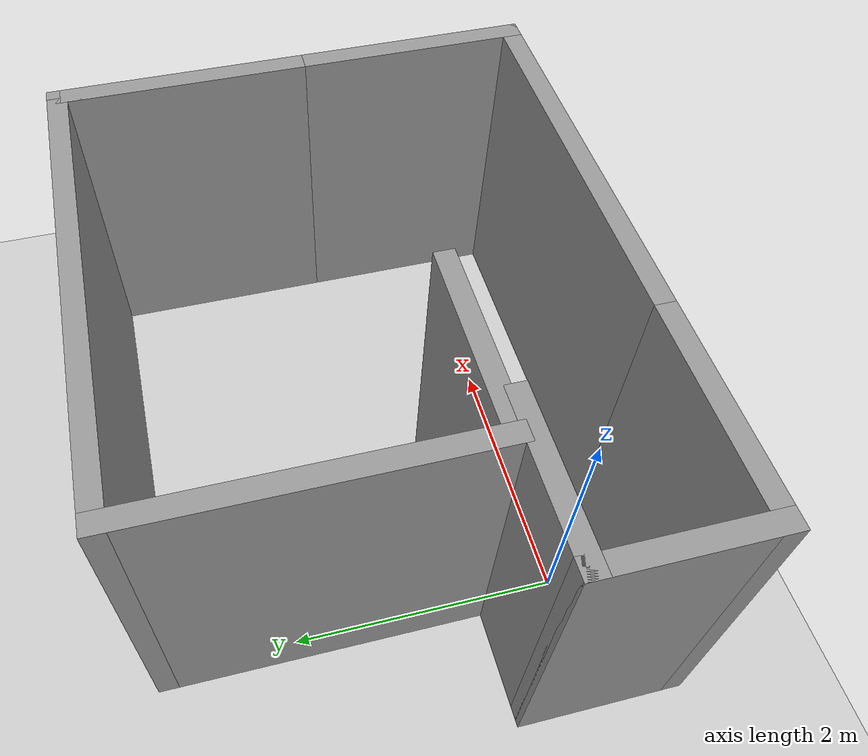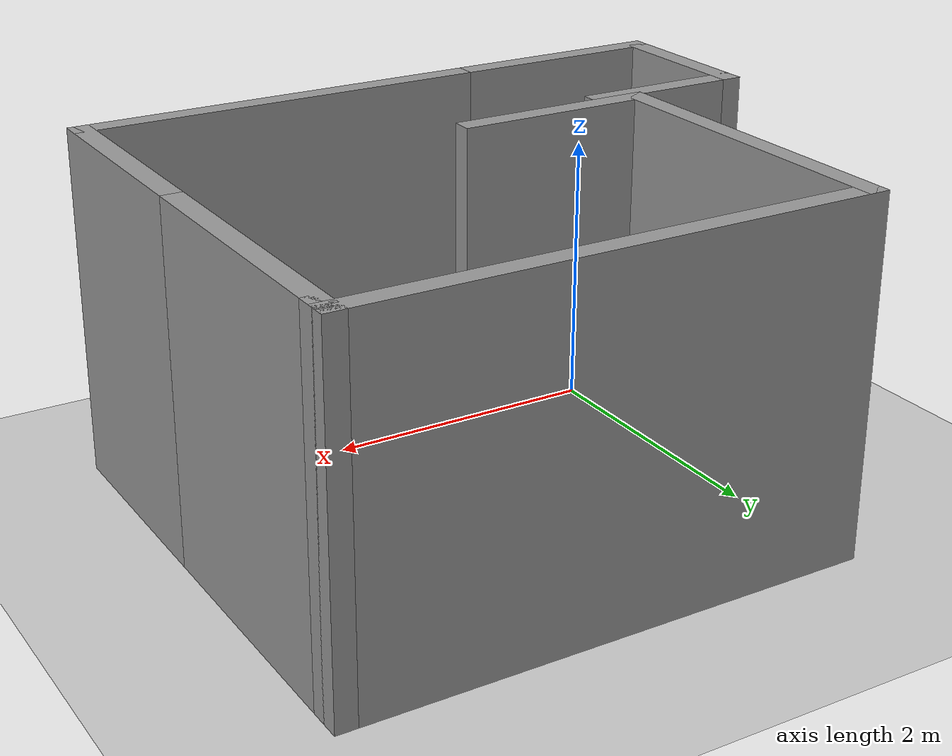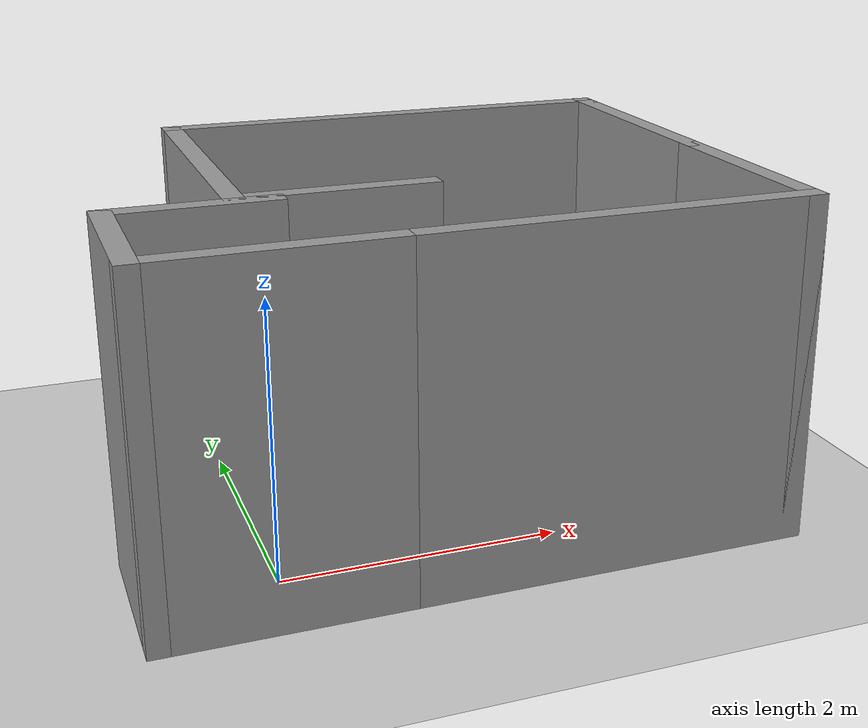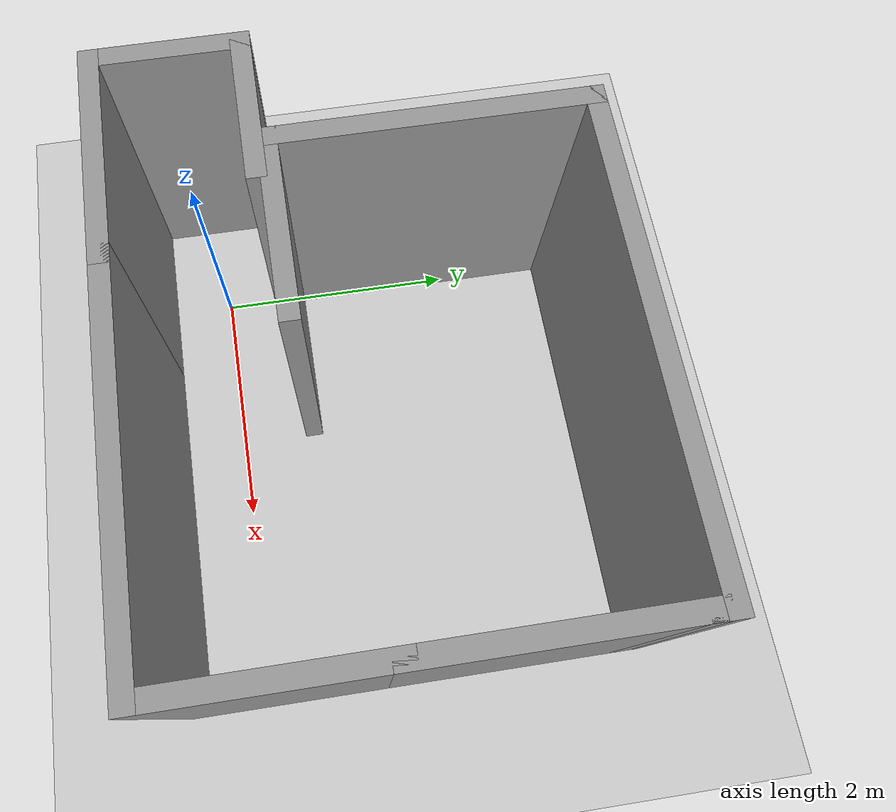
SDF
<sdf version="1.7">
 <world name="default">
  <light name="sun" type="directional">
   <pose>0 0 10 0 -0 0</pose>
   <diffuse>0.8 0.8 0.8 1</diffuse>
   <specular>0.2 0.2 0.2 1</specular>
   <attenuation>
    <range>1000</range>
    <constant>0.9</constant>
    <linear>0.01</linear>
    <quadratic>0.001</quadratic>
   </attenuation>
   <direction>-0.5 0.1 -0.9</direction>
   <spot><inner_angle>0</inner_angle><outer_angle>0</outer_angle><falloff>0</falloff></spot>
  </light>
  <model name="ground_plane">
   <static>1</static>
   <link name="link">
    <collision name="collision">
     <geometry><plane><normal>0 0 1</normal><size>100 100</size></plane></geometry>
     <surface>
      <contact><collide_bitmask>65535</collide_bitmask></contact>
      <friction><ode><mu>100</mu><mu2>50</mu2></ode></friction>
     </surface>
    </collision>
    <visual name="visual">
     <cast_shadows>0</cast_shadows>
     <geometry><plane><normal>0 0 1</normal><size>100 100</size></plane></geometry>
     <material>
      <script><uri>file://media/materials/scripts/gazebo.material</uri><name>Gazebo/Grey</name></script>
     </material>
    </visual>
   </link>
  </model>
  <gravity>0 0 -9.8</gravity>
  <magnetic_field>6e-06 2.3e-05 -4.2e-05</magnetic_field>
  <atmosphere type="adiabatic"/>
  <physics type="ode">
   <max_step_size>0.001</max_step_size>
   <real_time_factor>1</real_time_factor>
   <real_time_update_rate>1000</real_time_update_rate>
  </physics>
  <scene><ambient>0.4 0.4 0.4 1</ambient><background>0.7 0.7 0.7 1</background><shadows>1</shadows></scene>
  <spherical_coordinates>
   <surface_model>EARTH_WGS84</surface_model>
   <latitude_deg>0</latitude_deg>
   <longitude_deg>0</longitude_deg>
   <elevation>0</elevation>
   <heading_deg>0</heading_deg>
  </spherical_coordinates>
  <model name="new_pipe">
   <pose>1.325 1.195 0 0 -0 0</pose>
   <link name="Wall_17">
    <collision name="Wall_17_Collision">
     <geometry><box><size>3 0.15 2.5</size></box></geometry>
     <pose>0 0 1.25 0 -0 0</pose>
    </collision>
    <visual name="Wall_17_Visual">
     <pose>0 0 1.25 0 -0 0</pose>
     <geometry><box><size>3 0.15 2.5</size></box></geometry>
     <material>
      <script><uri>file://media/materials/scripts/gazebo.material</uri><name>Gazebo/Grey</name></script>
      <ambient>1 1 1 1</ambient>
     </material>
     <meta><layer>0</layer></meta>
    </visual>
    <pose>0.8 -1.775 0 0 -0 0</pose>
   </link>
   <link name="Wall_18">
    <collision name="Wall_18_Collision">
     <geometry><box><size>1.75 0.15 2.5</size></box></geometry>
     <pose>0 0 1.25 0 -0 0</pose>
    </collision>
    <visual name="Wall_18_Visual">
     <pose>0 0 1.25 0 -0 0</pose>
     <geometry><box><size>1.75 0.15 2.5</size></box></geometry>
     <material>
      <script><uri>file://media/materials/scripts/gazebo.material</uri><name>Gazebo/Grey</name></script>
      <ambient>1 1 1 1</ambient>
     </material>
     <meta><layer>0</layer></meta>
    </visual>
    <pose>2.225 -0.975 0 0 -0 1.5708</pose>
   </link>
   <link name="Wall_21">
    <collision name="Wall_21_Collision">
     <geometry><box><size>2 0.15 2.5</size></box></geometry>
     <pose>0 0 1.25 0 -0 0</pose>
    </collision>
    <visual name="Wall_21_Visual">
     <pose>0 0 1.25 0 -0 0</pose>
     <geometry><box><size>2 0.15 2.5</size></box></geometry>
     <material>
      <script><uri>file://media/materials/scripts/gazebo.material</uri><name>Gazebo/Grey</name></script>
      <ambient>1 1 1 1</ambient>
     </material>
     <meta><layer>0</layer></meta>
    </visual>
    <pose>2.225 0.75 0 0 -0 1.5708</pose>
   </link>
   <link name="Wall_23">
    <collision name="Wall_23_Collision">
     <geometry><box><size>0.25 0.15 2.5</size></box></geometry>
     <pose>0 0 1.25 0 -0 0</pose>
    </collision>
    <visual name="Wall_23_Visual">
     <pose>0 0 1.25 0 -0 0</pose>
     <geometry><box><size>0.25 0.15 2.5</size></box></geometry>
     <material>
      <script><uri>file://media/materials/scripts/gazebo.material</uri><name>Gazebo/Grey</name></script>
      <ambient>1 1 1 1</ambient>
     </material>
     <meta><layer>0</layer></meta>
    </visual>
    <pose>2.225 1.725 0 0 -0 1.5708</pose>
   </link>
   <link name="Wall_24">
    <collision name="Wall_24_Collision">
     <geometry><box><size>3.75 0.15 2.5</size></box></geometry>
     <pose>0 0 1.25 0 -0 0</pose>
    </collision>
    <visual name="Wall_24_Visual">
     <pose>0 0 1.25 0 -0 0</pose>
     <geometry><box><size>3.75 0.15 2.5</size></box></geometry>
     <material>
      <script><uri>file://media/materials/scripts/gazebo.material</uri><name>Gazebo/Grey</name></script>
      <ambient>1 1 1 1</ambient>
     </material>
     <meta><layer>0</layer></meta>
    </visual>
    <pose>0.425 1.775 0 0 -0 3.14159</pose>
   </link>
   <link name="Wall_25">
    <collision name="Wall_25_Collision">
     <geometry><box><size>2.5 0.15 2.5</size></box></geometry>
     <pose>0 0 1.25 0 -0 0</pose>
    </collision>
    <visual name="Wall_25_Visual">
     <pose>0 0 1.25 0 -0 0</pose>
     <geometry><box><size>2.5 0.15 2.5</size></box></geometry>
     <material>
      <script><uri>file://media/materials/scripts/gazebo.material</uri><name>Gazebo/Grey</name></script>
      <ambient>1 1 1 1</ambient>
     </material>
     <meta><layer>0</layer></meta>
    </visual>
    <pose>-1.375 0.6 0 0 -0 -1.5708</pose>
   </link>
   <link name="Wall_26">
    <collision name="Wall_26_Collision">
     <geometry><box><size>1.5 0.15 2.5</size></box></geometry>
     <pose>0 0 1.25 0 -0 0</pose>
    </collision>
    <visual name="Wall_26_Visual">
     <pose>0 0 1.25 0 -0 0</pose>
     <geometry><box><size>1.5 0.15 2.5</size></box></geometry>
     <material>
      <script><uri>file://media/materials/scripts/gazebo.material</uri><name>Gazebo/Grey</name></script>
      <ambient>1 1 1 1</ambient>
     </material>
     <meta><layer>0</layer></meta>
    </visual>
    <pose>-0.7 -0.575 0 0 -0 0</pose>
   </link>
   <link name="Wall_31">
    <collision name="Wall_31_Collision">
     <geometry><box><size>1.75 0.15 2.5</size></box></geometry>
     <pose>0 0 1.25 0 -0 0</pose>
    </collision>
    <visual name="Wall_31_Visual">
     <pose>0 0 1.25 0 -0 0</pose>
     <geometry><box><size>1.75 0.15 2.5</size></box></geometry>
     <material>
      <script><uri>file://media/materials/scripts/gazebo.material</uri><name>Gazebo/Grey</name></script>
      <ambient>1 1 1 1</ambient>
     </material>
     <meta><layer>0</layer></meta>
    </visual>
    <pose>-1.425 -1.775 0 0 -0 3.14159</pose>
   </link>
   <link name="Wall_33">
    <collision name="Wall_33_Collision">
     <geometry><box><size>1.25 0.15 2.5</size></box></geometry>
     <pose>0 0 1.25 0 -0 0</pose>
    </collision>
    <visual name="Wall_33_Visual">
     <pose>0 0 1.25 0 -0 0</pose>
     <geometry><box><size>1.25 0.15 2.5</size></box></geometry>
     <material>
      <script><uri>file://media/materials/scripts/gazebo.material</uri><name>Gazebo/Grey</name></script>
      <ambient>1 1 1 1</ambient>
     </material>
     <meta><layer>0</layer></meta>
    </visual>
    <pose>-2.225 -1.225 0 0 -0 1.5708</pose>
   </link>
   <link name="Wall_34">
    <collision name="Wall_34_Collision">
     <geometry><box><size>1.25 0.15 2.5</size></box></geometry>
     <pose>0 0 1.25 0 -0 0</pose>
    </collision>
    <visual name="Wall_34_Visual">
     <pose>0 0 1.25 0 -0 0</pose>
     <geometry><box><size>1.25 0.15 2.5</size></box></geometry>
     <material>
      <script><uri>file://media/materials/scripts/gazebo.material</uri><name>Gazebo/Grey</name></script>
      <ambient>1 1 1 1</ambient>
     </material>
     <meta><layer>0</layer></meta>
    </visual>
    <pose>-1.675 -0.675 0 0 -0 0</pose>
   </link>
   <static>1</static>
  </model>
 </world>
</sdf>
